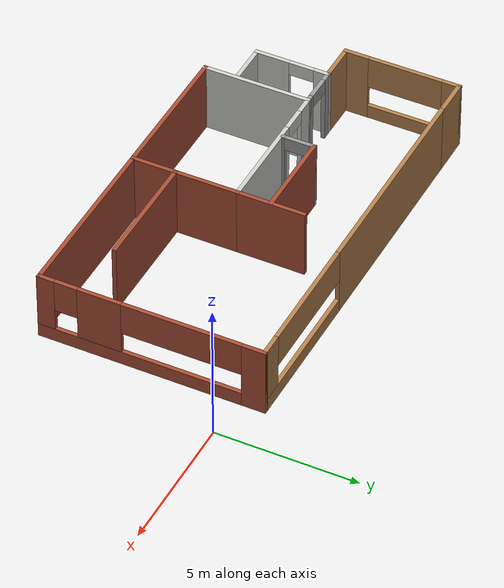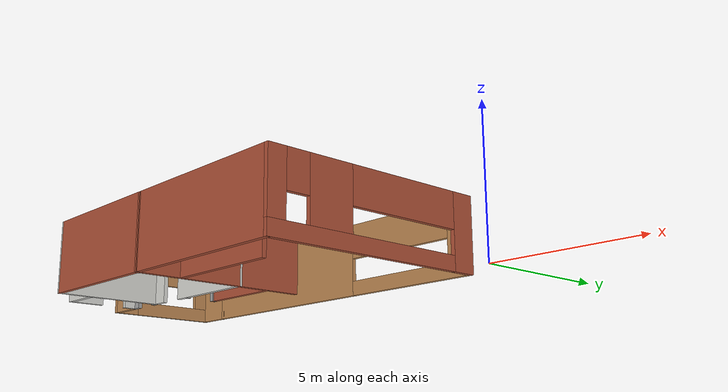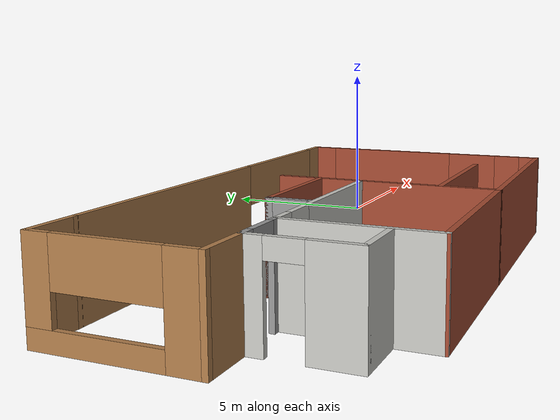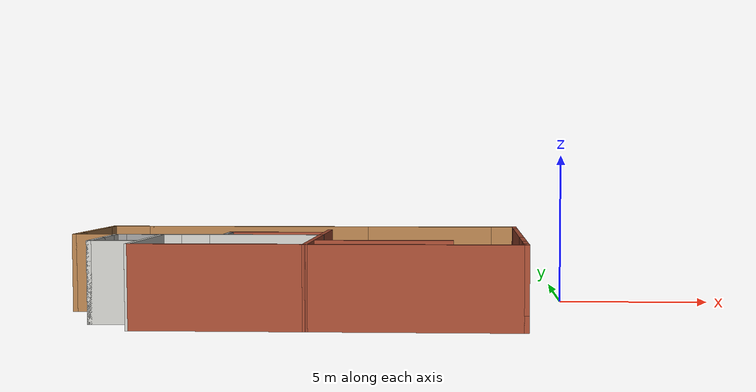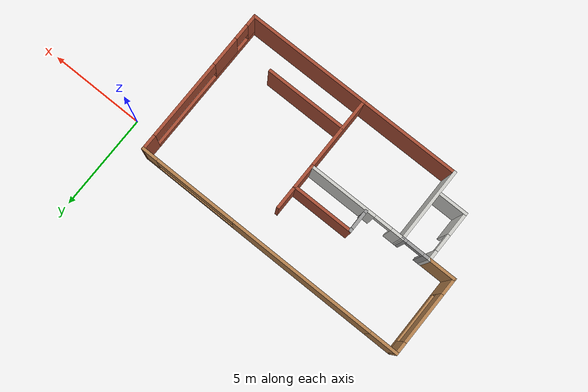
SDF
<?xml version='1.0'?>
<sdf version='1.6'>
  <model name='myplace'>
    <pose frame=''>-8.64638 -2.93122 0 0 -0 0</pose>
    <link name='Wall_56'>
      <pose frame=''>-5.02365 -0.175493 0 0 -0 3.14159</pose>
      <visual name='Wall_56_Visual_0'>
        <pose frame=''>-0.660344 0 1.25 0 -0 0</pose>
        <geometry>
          <box>
            <size>0.30723 0.15 2.5</size>
          </box>
        </geometry>
        <material>
          <script>
            <uri>file://media/materials/scripts/gazebo.material</uri>
            <name>Gazebo/Grey</name>
          </script>
          <ambient>1 1 1 1</ambient>
        </material>
        <meta>
          <layer>0</layer>
        </meta>
      </visual>
      <collision name='Wall_56_Collision_0'>
        <geometry>
          <box>
            <size>0.30723 0.15 2.5</size>
          </box>
        </geometry>
        <pose frame=''>-0.660344 0 1.25 0 -0 0</pose>
      </collision>
      <visual name='Wall_56_Visual_1'>
        <pose frame=''>0.603615 0 1.25 0 -0 0</pose>
        <geometry>
          <box>
            <size>0.420688 0.15 2.5</size>
          </box>
        </geometry>
        <material>
          <script>
            <uri>file://media/materials/scripts/gazebo.material</uri>
            <name>Gazebo/Grey</name>
          </script>
          <ambient>1 1 1 1</ambient>
        </material>
        <meta>
          <layer>0</layer>
        </meta>
      </visual>
      <collision name='Wall_56_Collision_1'>
        <geometry>
          <box>
            <size>0.420688 0.15 2.5</size>
          </box>
        </geometry>
        <pose frame=''>0.603615 0 1.25 0 -0 0</pose>
      </collision>
      <visual name='Wall_56_Visual_2'>
        <pose frame=''>-0.056729 0 2.25 0 -0 0</pose>
        <geometry>
          <box>
            <size>0.9 0.15 0.5</size>
          </box>
        </geometry>
        <material>
          <script>
            <uri>file://media/materials/scripts/gazebo.material</uri>
            <name>Gazebo/Grey</name>
          </script>
          <ambient>1 1 1 1</ambient>
        </material>
        <meta>
          <layer>0</layer>
        </meta>
      </visual>
      <collision name='Wall_56_Collision_2'>
        <geometry>
          <box>
            <size>0.9 0.15 0.5</size>
          </box>
        </geometry>
        <pose frame=''>-0.056729 0 2.25 0 -0 0</pose>
      </collision>
    </link>
    <link name='Wall_58'>
      <pose frame=''>0.66434 3.92507 0 0 -0 8.8e-05</pose>
      <visual name='Wall_58_Visual_0'>
        <pose frame=''>-2.59963 0 1.25 0 -0 0</pose>
        <geometry>
          <box>
            <size>7.80465 0.15 2.5</size>
          </box>
        </geometry>
        <material>
          <script>
            <uri>file://media/materials/scripts/gazebo.material</uri>
            <name>Gazebo/Wood</name>
          </script>
          <ambient>1 1 1 1</ambient>
        </material>
        <meta>
          <layer>0</layer>
        </meta>
      </visual>
      <collision name='Wall_58_Collision_0'>
        <geometry>
          <box>
            <size>7.80465 0.15 2.5</size>
          </box>
        </geometry>
        <pose frame=''>-2.59963 0 1.25 0 -0 0</pose>
      </collision>
      <visual name='Wall_58_Visual_1'>
        <pose frame=''>3.90232 0 0.25 0 -0 0</pose>
        <geometry>
          <box>
            <size>5.19925 0.15 0.5</size>
          </box>
        </geometry>
        <material>
          <script>
            <uri>file://media/materials/scripts/gazebo.material</uri>
            <name>Gazebo/Wood</name>
          </script>
          <ambient>1 1 1 1</ambient>
        </material>
        <meta>
          <layer>0</layer>
        </meta>
      </visual>
      <collision name='Wall_58_Collision_1'>
        <geometry>
          <box>
            <size>5.19925 0.15 0.5</size>
          </box>
        </geometry>
        <pose frame=''>3.90232 0 0.25 0 -0 0</pose>
      </collision>
      <visual name='Wall_58_Visual_2'>
        <pose frame=''>6.07184 0 1.5 0 -0 0</pose>
        <geometry>
          <box>
            <size>0.860213 0.15 2</size>
          </box>
        </geometry>
        <material>
          <script>
            <uri>file://media/materials/scripts/gazebo.material</uri>
            <name>Gazebo/Wood</name>
          </script>
          <ambient>1 1 1 1</ambient>
        </material>
        <meta>
          <layer>0</layer>
        </meta>
      </visual>
      <collision name='Wall_58_Collision_2'>
        <geometry>
          <box>
            <size>0.860213 0.15 2</size>
          </box>
        </geometry>
        <pose frame=''>6.07184 0 1.5 0 -0 0</pose>
      </collision>
      <visual name='Wall_58_Visual_3'>
        <pose frame=''>3.47222 0 1.9 0 -0 0</pose>
        <geometry>
          <box>
            <size>4.33904 0.15 1.2</size>
          </box>
        </geometry>
        <material>
          <script>
            <uri>file://media/materials/scripts/gazebo.material</uri>
            <name>Gazebo/Wood</name>
          </script>
          <ambient>1 1 1 1</ambient>
        </material>
        <meta>
          <layer>0</layer>
        </meta>
      </visual>
      <collision name='Wall_58_Collision_3'>
        <geometry>
          <box>
            <size>4.33904 0.15 1.2</size>
          </box>
        </geometry>
        <pose frame=''>3.47222 0 1.9 0 -0 0</pose>
      </collision>
    </link>
    <link name='Wall_59'>
      <pose frame=''>7.11261 0.000633 0 0 0 -1.5708</pose>
      <visual name='Wall_59_Visual_0'>
        <pose frame=''>-3.58058 0 1.25 0 -0 0</pose>
        <geometry>
          <box>
            <size>0.838846 0.15 2.5</size>
          </box>
        </geometry>
        <material>
          <script>
            <uri>file://media/materials/scripts/gazebo.material</uri>
            <name>Gazebo/Bricks</name>
          </script>
          <ambient>1 1 1 1</ambient>
        </material>
        <meta>
          <layer>0</layer>
        </meta>
      </visual>
      <collision name='Wall_59_Collision_0'>
        <geometry>
          <box>
            <size>0.838846 0.15 2.5</size>
          </box>
        </geometry>
        <pose frame=''>-3.58058 0 1.25 0 -0 0</pose>
      </collision>
      <visual name='Wall_59_Visual_1'>
        <pose frame=''>0.419423 0 0.25 0 -0 0</pose>
        <geometry>
          <box>
            <size>7.16115 0.15 0.5</size>
          </box>
        </geometry>
        <material>
          <script>
            <uri>file://media/materials/scripts/gazebo.material</uri>
            <name>Gazebo/Bricks</name>
          </script>
          <ambient>1 1 1 1</ambient>
        </material>
        <meta>
          <layer>0</layer>
        </meta>
      </visual>
      <collision name='Wall_59_Collision_1'>
        <geometry>
          <box>
            <size>7.16115 0.15 0.5</size>
          </box>
        </geometry>
        <pose frame=''>0.419423 0 0.25 0 -0 0</pose>
      </collision>
      <visual name='Wall_59_Visual_2'>
        <pose frame=''>1.80126 0 1.5 0 -0 0</pose>
        <geometry>
          <box>
            <size>1.54516 0.15 2</size>
          </box>
        </geometry>
        <material>
          <script>
            <uri>file://media/materials/scripts/gazebo.material</uri>
            <name>Gazebo/Bricks</name>
          </script>
          <ambient>1 1 1 1</ambient>
        </material>
        <meta>
          <layer>0</layer>
        </meta>
      </visual>
      <collision name='Wall_59_Collision_2'>
        <geometry>
          <box>
            <size>1.54516 0.15 2</size>
          </box>
        </geometry>
        <pose frame=''>1.80126 0 1.5 0 -0 0</pose>
      </collision>
      <visual name='Wall_59_Visual_3'>
        <pose frame=''>3.68692 0 1.5 0 -0 0</pose>
        <geometry>
          <box>
            <size>0.62616 0.15 2</size>
          </box>
        </geometry>
        <material>
          <script>
            <uri>file://media/materials/scripts/gazebo.material</uri>
            <name>Gazebo/Bricks</name>
          </script>
          <ambient>1 1 1 1</ambient>
        </material>
        <meta>
          <layer>0</layer>
        </meta>
      </visual>
      <collision name='Wall_59_Collision_3'>
        <geometry>
          <box>
            <size>0.62616 0.15 2</size>
          </box>
        </geometry>
        <pose frame=''>3.68692 0 1.5 0 -0 0</pose>
      </collision>
      <visual name='Wall_59_Visual_4'>
        <pose frame=''>-1.06624 0 1.9 0 -0 0</pose>
        <geometry>
          <box>
            <size>4.18983 0.15 1.2</size>
          </box>
        </geometry>
        <material>
          <script>
            <uri>file://media/materials/scripts/gazebo.material</uri>
            <name>Gazebo/Bricks</name>
          </script>
          <ambient>1 1 1 1</ambient>
        </material>
        <meta>
          <layer>0</layer>
        </meta>
      </visual>
      <collision name='Wall_59_Collision_4'>
        <geometry>
          <box>
            <size>4.18983 0.15 1.2</size>
          </box>
        </geometry>
        <pose frame=''>-1.06624 0 1.9 0 -0 0</pose>
      </collision>
      <visual name='Wall_59_Visual_5'>
        <pose frame=''>2.97384 0 1.9 0 -0 0</pose>
        <geometry>
          <box>
            <size>0.8 0.15 1.2</size>
          </box>
        </geometry>
        <material>
          <script>
            <uri>file://media/materials/scripts/gazebo.material</uri>
            <name>Gazebo/Bricks</name>
          </script>
          <ambient>1 1 1 1</ambient>
        </material>
        <meta>
          <layer>0</layer>
        </meta>
      </visual>
      <collision name='Wall_59_Collision_5'>
        <geometry>
          <box>
            <size>0.8 0.15 1.2</size>
          </box>
        </geometry>
        <pose frame=''>2.97384 0 1.9 0 -0 0</pose>
      </collision>
    </link>
    <link name='Wall_60'>
      <collision name='Wall_60_Collision'>
        <geometry>
          <box>
            <size>6.41862 0.15 2.5</size>
          </box>
        </geometry>
        <pose frame=''>0 0 1.25 0 -0 0</pose>
      </collision>
      <visual name='Wall_60_Visual'>
        <pose frame=''>0 0 1.25 0 -0 0</pose>
        <geometry>
          <box>
            <size>6.41862 0.15 2.5</size>
          </box>
        </geometry>
        <material>
          <script>
            <uri>file://media/materials/scripts/gazebo.material</uri>
            <name>Gazebo/Bricks</name>
          </script>
          <ambient>1 1 1 1</ambient>
        </material>
        <meta>
          <layer>0</layer>
        </meta>
      </visual>
      <pose frame=''>3.95698 -3.92493 0 0 0 -3.14141</pose>
    </link>
    <link name='Wall_69'>
      <pose frame=''>-1.73469 -0.175493 0 0 -0 0</pose>
      <visual name='Wall_69_Visual_0'>
        <pose frame=''>-2.26885 0 1.25 0 -0 0</pose>
        <geometry>
          <box>
            <size>0.712304 0.15 2.5</size>
          </box>
        </geometry>
        <material>
          <script>
            <uri>file://media/materials/scripts/gazebo.material</uri>
            <name>Gazebo/CeilingTiled</name>
          </script>
          <ambient>1 1 1 1</ambient>
        </material>
        <meta>
          <layer>0</layer>
        </meta>
      </visual>
      <collision name='Wall_69_Collision_0'>
        <geometry>
          <box>
            <size>0.712304 0.15 2.5</size>
          </box>
        </geometry>
        <pose frame=''>-2.26885 0 1.25 0 -0 0</pose>
      </collision>
      <visual name='Wall_69_Visual_1'>
        <pose frame=''>0.806152 0 1.25 0 -0 0</pose>
        <geometry>
          <box>
            <size>3.6377 0.15 2.5</size>
          </box>
        </geometry>
        <material>
          <script>
            <uri>file://media/materials/scripts/gazebo.material</uri>
            <name>Gazebo/CeilingTiled</name>
          </script>
          <ambient>1 1 1 1</ambient>
        </material>
        <meta>
          <layer>0</layer>
        </meta>
      </visual>
      <collision name='Wall_69_Collision_1'>
        <geometry>
          <box>
            <size>3.6377 0.15 2.5</size>
          </box>
        </geometry>
        <pose frame=''>0.806152 0 1.25 0 -0 0</pose>
      </collision>
      <visual name='Wall_69_Visual_2'>
        <pose frame=''>-1.4627 0 2.25 0 -0 0</pose>
        <geometry>
          <box>
            <size>0.9 0.15 0.5</size>
          </box>
        </geometry>
        <material>
          <script>
            <uri>file://media/materials/scripts/gazebo.material</uri>
            <name>Gazebo/CeilingTiled</name>
          </script>
          <ambient>1 1 1 1</ambient>
        </material>
        <meta>
          <layer>0</layer>
        </meta>
      </visual>
      <collision name='Wall_69_Collision_2'>
        <geometry>
          <box>
            <size>0.9 0.15 0.5</size>
          </box>
        </geometry>
        <pose frame=''>-1.4627 0 2.25 0 -0 0</pose>
      </collision>
    </link>
    <link name='Wall_72'>
      <collision name='Wall_72_Collision'>
        <geometry>
          <box>
            <size>3.90001 0.15 2.5</size>
          </box>
        </geometry>
        <pose frame=''>0 0 1.25 0 -0 0</pose>
      </collision>
      <visual name='Wall_72_Visual'>
        <pose frame=''>0 0 1.25 0 -0 0</pose>
        <geometry>
          <box>
            <size>3.90001 0.15 2.5</size>
          </box>
        </geometry>
        <material>
          <script>
            <uri>file://media/materials/scripts/gazebo.material</uri>
            <name>Gazebo/Bricks</name>
          </script>
          <ambient>1 1 1 1</ambient>
        </material>
        <meta>
          <layer>0</layer>
        </meta>
      </visual>
      <pose frame=''>0.818989 -2.05049 0 0 0 -1.56883</pose>
    </link>
    <link name='Wall_74'>
      <collision name='Wall_74_Collision'>
        <geometry>
          <box>
            <size>5.25 0.15 2.5</size>
          </box>
        </geometry>
        <pose frame=''>0 0 1.25 0 -0 0</pose>
      </collision>
      <visual name='Wall_74_Visual'>
        <pose frame=''>0 0 1.25 0 -0 0</pose>
        <geometry>
          <box>
            <size>5.25 0.15 2.5</size>
          </box>
        </geometry>
        <material>
          <script>
            <uri>file://media/materials/scripts/gazebo.material</uri>
            <name>Gazebo/Bricks</name>
          </script>
          <ambient>1 1 1 1</ambient>
        </material>
        <meta>
          <layer>0</layer>
        </meta>
      </visual>
      <pose frame=''>-1.72733 -3.92549 0 0 -0 3.14159</pose>
    </link>
    <link name='Wall_75'>
      <collision name='Wall_75_Collision'>
        <geometry>
          <box>
            <size>3.90001 0.15 2.5</size>
          </box>
        </geometry>
        <pose frame=''>0 0 1.25 0 -0 0</pose>
      </collision>
      <visual name='Wall_75_Visual'>
        <pose frame=''>0 0 1.25 0 -0 0</pose>
        <geometry>
          <box>
            <size>3.90001 0.15 2.5</size>
          </box>
        </geometry>
        <material>
          <script>
            <uri>file://media/materials/scripts/gazebo.material</uri>
            <name>Gazebo/CeilingTiled</name>
          </script>
          <ambient>1 1 1 1</ambient>
        </material>
        <meta>
          <layer>0</layer>
        </meta>
      </visual>
      <pose frame=''>-4.28101 -2.05049 0 0 -0 1.57276</pose>
    </link>
    <link name='Wall_79'>
      <collision name='Wall_79_Collision'>
        <geometry>
          <box>
            <size>2.5 0.15 2.5</size>
          </box>
        </geometry>
        <pose frame=''>0 0 1.25 0 -0 0</pose>
      </collision>
      <visual name='Wall_79_Visual'>
        <pose frame=''>0 0 1.25 0 -0 0</pose>
        <geometry>
          <box>
            <size>2.5 0.15 2.5</size>
          </box>
        </geometry>
        <material>
          <script>
            <uri>file://media/materials/scripts/gazebo.material</uri>
            <name>Gazebo/Bricks</name>
          </script>
          <ambient>1 1 1 1</ambient>
        </material>
        <meta>
          <layer>0</layer>
        </meta>
      </visual>
      <pose frame=''>0.815308 0.999507 0 0 -0 1.5708</pose>
    </link>
    <link name='Wall_81'>
      <collision name='Wall_81_Collision'>
        <geometry>
          <box>
            <size>4.25 0.15 2.5</size>
          </box>
        </geometry>
        <pose frame=''>0 0 1.25 0 -0 0</pose>
      </collision>
      <visual name='Wall_81_Visual'>
        <pose frame=''>0 0 1.25 0 -0 0</pose>
        <geometry>
          <box>
            <size>4.25 0.15 2.5</size>
          </box>
        </geometry>
        <material>
          <script>
            <uri>file://media/materials/scripts/gazebo.material</uri>
            <name>Gazebo/Bricks</name>
          </script>
          <ambient>1 1 1 1</ambient>
        </material>
        <meta>
          <layer>0</layer>
        </meta>
      </visual>
      <pose frame=''>2.90335 -2.39757 0 0 -0 0</pose>
    </link>
    <link name='Wall_83'>
      <collision name='Wall_83_Collision'>
        <geometry>
          <box>
            <size>3.25 0.15 2.5</size>
          </box>
        </geometry>
        <pose frame=''>0 0 1.25 0 -0 0</pose>
      </collision>
      <visual name='Wall_83_Visual'>
        <pose frame=''>0 0 1.25 0 -0 0</pose>
        <geometry>
          <box>
            <size>3.25 0.15 2.5</size>
          </box>
        </geometry>
        <material>
          <script>
            <uri>file://media/materials/scripts/gazebo.material</uri>
            <name>Gazebo/Bricks</name>
          </script>
          <ambient>1 1 1 1</ambient>
        </material>
        <meta>
          <layer>0</layer>
        </meta>
      </visual>
      <pose frame=''>-0.739288 1.01357 0 0 -0 3.14159</pose>
    </link>
    <link name='Wall_84'>
      <pose frame=''>-2.28929 0.463574 0 0 0 -1.5708</pose>
      <visual name='Wall_84_Visual_0'>
        <pose frame=''>-0.524684 0 1.25 0 -0 0</pose>
        <geometry>
          <box>
            <size>0.200631 0.15 2.5</size>
          </box>
        </geometry>
        <material>
          <script>
            <uri>file://media/materials/scripts/gazebo.material</uri>
            <name>Gazebo/Grey</name>
          </script>
          <ambient>1 1 1 1</ambient>
        </material>
        <meta>
          <layer>0</layer>
        </meta>
      </visual>
      <collision name='Wall_84_Collision_0'>
        <geometry>
          <box>
            <size>0.200631 0.15 2.5</size>
          </box>
        </geometry>
        <pose frame=''>-0.524684 0 1.25 0 -0 0</pose>
      </collision>
      <visual name='Wall_84_Visual_1'>
        <pose frame=''>0.550316 0 1.25 0 -0 0</pose>
        <geometry>
          <box>
            <size>0.149369 0.15 2.5</size>
          </box>
        </geometry>
        <material>
          <script>
            <uri>file://media/materials/scripts/gazebo.material</uri>
            <name>Gazebo/Grey</name>
          </script>
          <ambient>1 1 1 1</ambient>
        </material>
        <meta>
          <layer>0</layer>
        </meta>
      </visual>
      <collision name='Wall_84_Collision_1'>
        <geometry>
          <box>
            <size>0.149369 0.15 2.5</size>
          </box>
        </geometry>
        <pose frame=''>0.550316 0 1.25 0 -0 0</pose>
      </collision>
      <visual name='Wall_84_Visual_2'>
        <pose frame=''>0.025631 0 2.25 0 -0 0</pose>
        <geometry>
          <box>
            <size>0.9 0.15 0.5</size>
          </box>
        </geometry>
        <material>
          <script>
            <uri>file://media/materials/scripts/gazebo.material</uri>
            <name>Gazebo/Grey</name>
          </script>
          <ambient>1 1 1 1</ambient>
        </material>
        <meta>
          <layer>0</layer>
        </meta>
      </visual>
      <collision name='Wall_84_Collision_2'>
        <geometry>
          <box>
            <size>0.9 0.15 0.5</size>
          </box>
        </geometry>
        <pose frame=''>0.025631 0 2.25 0 -0 0</pose>
      </collision>
    </link>
    <link name='Wall_86'>
      <pose frame=''>-5.76261 -1.47549 0 0 0 -1.5708</pose>
      <visual name='Wall_86_Visual_0'>
        <pose frame=''>-1.09105 0 1.25 0 -0 0</pose>
        <geometry>
          <box>
            <size>0.567901 0.15 2.5</size>
          </box>
        </geometry>
        <material>
          <script>
            <uri>file://media/materials/scripts/gazebo.material</uri>
            <name>Gazebo/CeilingTiled</name>
          </script>
          <ambient>1 1 1 1</ambient>
        </material>
        <meta>
          <layer>0</layer>
        </meta>
      </visual>
      <collision name='Wall_86_Collision_0'>
        <geometry>
          <box>
            <size>0.567901 0.15 2.5</size>
          </box>
        </geometry>
        <pose frame=''>-1.09105 0 1.25 0 -0 0</pose>
      </collision>
      <visual name='Wall_86_Visual_1'>
        <pose frame=''>0.73395 0 1.25 0 -0 0</pose>
        <geometry>
          <box>
            <size>1.2821 0.15 2.5</size>
          </box>
        </geometry>
        <material>
          <script>
            <uri>file://media/materials/scripts/gazebo.material</uri>
            <name>Gazebo/CeilingTiled</name>
          </script>
          <ambient>1 1 1 1</ambient>
        </material>
        <meta>
          <layer>0</layer>
        </meta>
      </visual>
      <collision name='Wall_86_Collision_1'>
        <geometry>
          <box>
            <size>1.2821 0.15 2.5</size>
          </box>
        </geometry>
        <pose frame=''>0.73395 0 1.25 0 -0 0</pose>
      </collision>
      <visual name='Wall_86_Visual_2'>
        <pose frame=''>-0.357099 0 2.25 0 -0 0</pose>
        <geometry>
          <box>
            <size>0.9 0.15 0.5</size>
          </box>
        </geometry>
        <material>
          <script>
            <uri>file://media/materials/scripts/gazebo.material</uri>
            <name>Gazebo/CeilingTiled</name>
          </script>
          <ambient>1 1 1 1</ambient>
        </material>
        <meta>
          <layer>0</layer>
        </meta>
      </visual>
      <collision name='Wall_86_Collision_2'>
        <geometry>
          <box>
            <size>0.9 0.15 0.5</size>
          </box>
        </geometry>
        <pose frame=''>-0.357099 0 2.25 0 -0 0</pose>
      </collision>
    </link>
    <link name='Wall_87'>
      <collision name='Wall_87_Collision'>
        <geometry>
          <box>
            <size>1.5 0.15 2.5</size>
          </box>
        </geometry>
        <pose frame=''>0 0 1.25 0 -0 0</pose>
      </collision>
      <visual name='Wall_87_Visual'>
        <pose frame=''>0 0 1.25 0 -0 0</pose>
        <geometry>
          <box>
            <size>1.5 0.15 2.5</size>
          </box>
        </geometry>
        <material>
          <script>
            <uri>file://media/materials/scripts/gazebo.material</uri>
            <name>Gazebo/CeilingTiled</name>
          </script>
          <ambient>1 1 1 1</ambient>
        </material>
        <meta>
          <layer>0</layer>
        </meta>
      </visual>
      <pose frame=''>-5.08761 -2.77549 0 0 -0 0</pose>
    </link>
    <link name='Wall_89'>
      <collision name='Wall_89_Collision'>
        <geometry>
          <box>
            <size>1.5 0.15 2.5</size>
          </box>
        </geometry>
        <pose frame=''>0 0 1.25 0 -0 0</pose>
      </collision>
      <visual name='Wall_89_Visual'>
        <pose frame=''>0 0 1.25 0 -0 0</pose>
        <geometry>
          <box>
            <size>1.5 0.15 2.5</size>
          </box>
        </geometry>
        <material>
          <script>
            <uri>file://media/materials/scripts/gazebo.material</uri>
            <name>Gazebo/Wood</name>
          </script>
          <ambient>1 1 1 1</ambient>
        </material>
        <meta>
          <layer>0</layer>
        </meta>
      </visual>
      <pose frame=''>-6.43761 -0.175493 0 0 -0 3.14159</pose>
    </link>
    <link name='Wall_90'>
      <pose frame=''>-7.11261 1.87451 0 0 -0 1.5708</pose>
      <visual name='Wall_90_Visual_0'>
        <pose frame=''>-1.66099 0 1.25 0 -0 0</pose>
        <geometry>
          <box>
            <size>0.928026 0.15 2.5</size>
          </box>
        </geometry>
        <material>
          <script>
            <uri>file://media/materials/scripts/gazebo.material</uri>
            <name>Gazebo/Wood</name>
          </script>
          <ambient>1 1 1 1</ambient>
        </material>
        <meta>
          <layer>0</layer>
        </meta>
      </visual>
      <collision name='Wall_90_Collision_0'>
        <geometry>
          <box>
            <size>0.928026 0.15 2.5</size>
          </box>
        </geometry>
        <pose frame=''>-1.66099 0 1.25 0 -0 0</pose>
      </collision>
      <visual name='Wall_90_Visual_1'>
        <pose frame=''>0.464013 0 0.25 0 -0 0</pose>
        <geometry>
          <box>
            <size>3.32197 0.15 0.5</size>
          </box>
        </geometry>
        <material>
          <script>
            <uri>file://media/materials/scripts/gazebo.material</uri>
            <name>Gazebo/Wood</name>
          </script>
          <ambient>1 1 1 1</ambient>
        </material>
        <meta>
          <layer>0</layer>
        </meta>
      </visual>
      <collision name='Wall_90_Collision_1'>
        <geometry>
          <box>
            <size>3.32197 0.15 0.5</size>
          </box>
        </geometry>
        <pose frame=''>0.464013 0 0.25 0 -0 0</pose>
      </collision>
      <visual name='Wall_90_Visual_2'>
        <pose frame=''>1.79142 0 1.5 0 -0 0</pose>
        <geometry>
          <box>
            <size>0.667162 0.15 2</size>
          </box>
        </geometry>
        <material>
          <script>
            <uri>file://media/materials/scripts/gazebo.material</uri>
            <name>Gazebo/Wood</name>
          </script>
          <ambient>1 1 1 1</ambient>
        </material>
        <meta>
          <layer>0</layer>
        </meta>
      </visual>
      <collision name='Wall_90_Collision_2'>
        <geometry>
          <box>
            <size>0.667162 0.15 2</size>
          </box>
        </geometry>
        <pose frame=''>1.79142 0 1.5 0 -0 0</pose>
      </collision>
      <visual name='Wall_90_Visual_3'>
        <pose frame=''>0.130432 0 1.9 0 -0 0</pose>
        <geometry>
          <box>
            <size>2.65481 0.15 1.2</size>
          </box>
        </geometry>
        <material>
          <script>
            <uri>file://media/materials/scripts/gazebo.material</uri>
            <name>Gazebo/Wood</name>
          </script>
          <ambient>1 1 1 1</ambient>
        </material>
        <meta>
          <layer>0</layer>
        </meta>
      </visual>
      <collision name='Wall_90_Collision_3'>
        <geometry>
          <box>
            <size>2.65481 0.15 1.2</size>
          </box>
        </geometry>
        <pose frame=''>0.130432 0 1.9 0 -0 0</pose>
      </collision>
    </link>
    <link name='Wall_91'>
      <collision name='Wall_91_Collision'>
        <geometry>
          <box>
            <size>1.5 0.15 2.5</size>
          </box>
        </geometry>
        <pose frame=''>0 0 1.25 0 -0 0</pose>
      </collision>
      <visual name='Wall_91_Visual'>
        <pose frame=''>0 0 1.25 0 -0 0</pose>
        <geometry>
          <box>
            <size>1.5 0.15 2.5</size>
          </box>
        </geometry>
        <material>
          <script>
            <uri>file://media/materials/scripts/gazebo.material</uri>
            <name>Gazebo/Wood</name>
          </script>
          <ambient>1 1 1 1</ambient>
        </material>
        <meta>
          <layer>0</layer>
        </meta>
      </visual>
      <pose frame=''>-6.43761 3.92451 0 0 -0 0</pose>
    </link>
    <static>1</static>
  </model>
</sdf>
